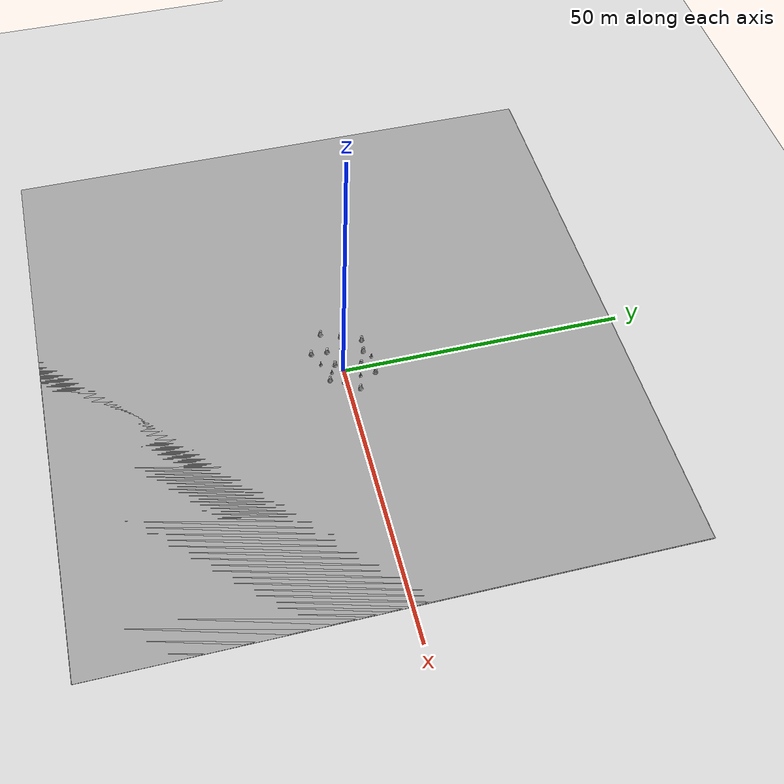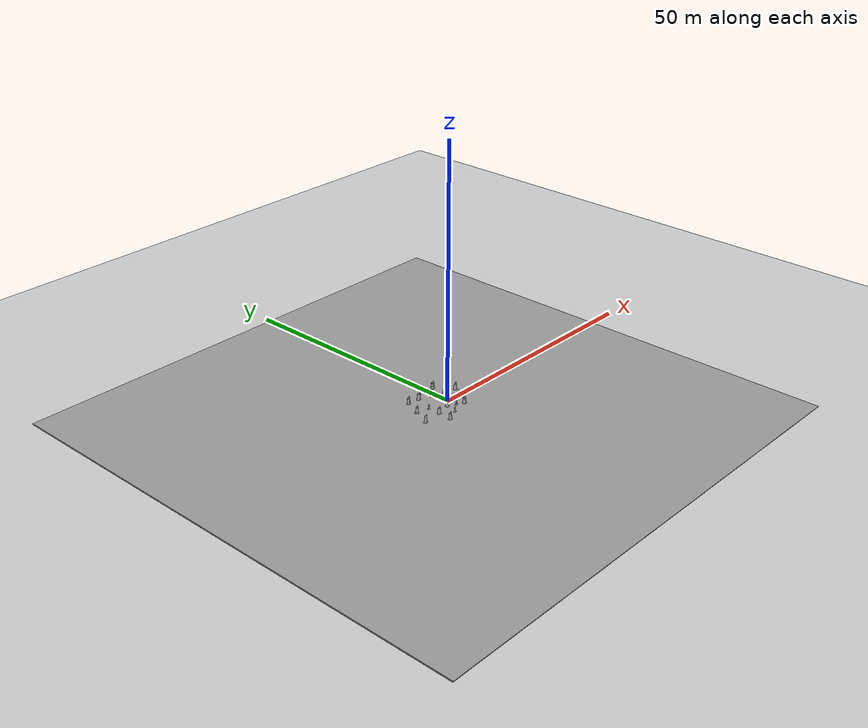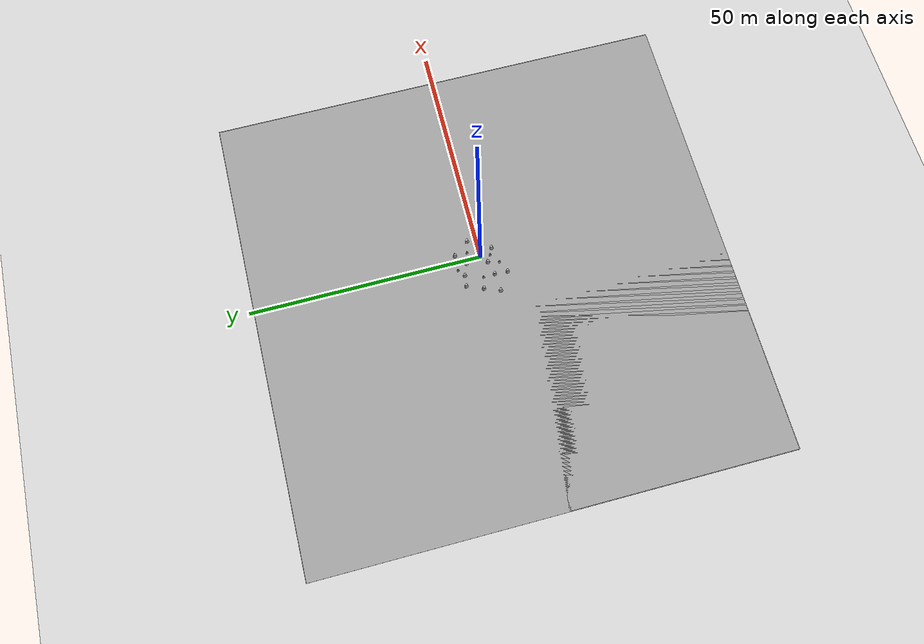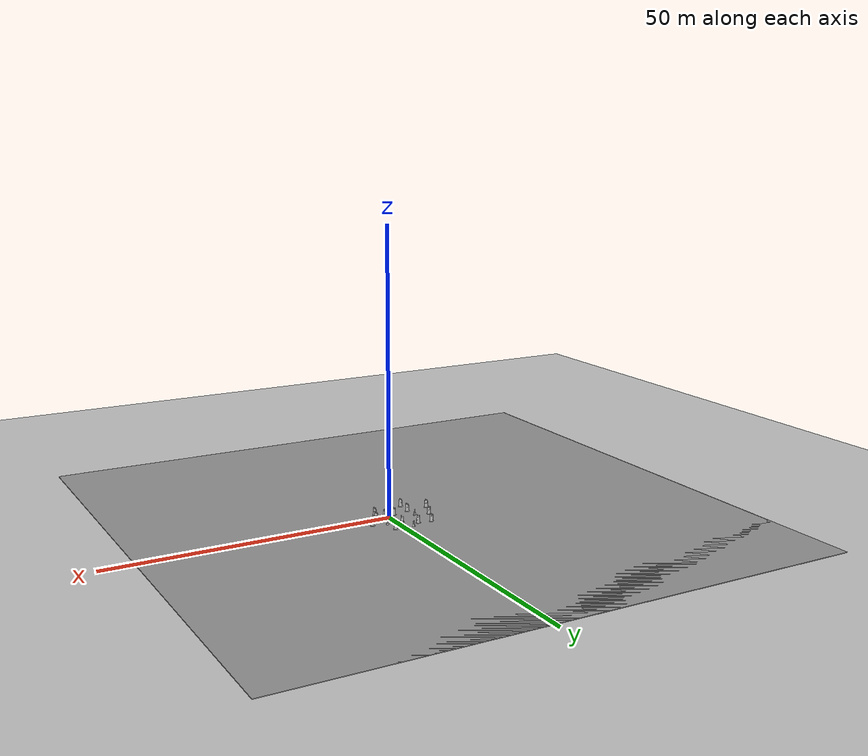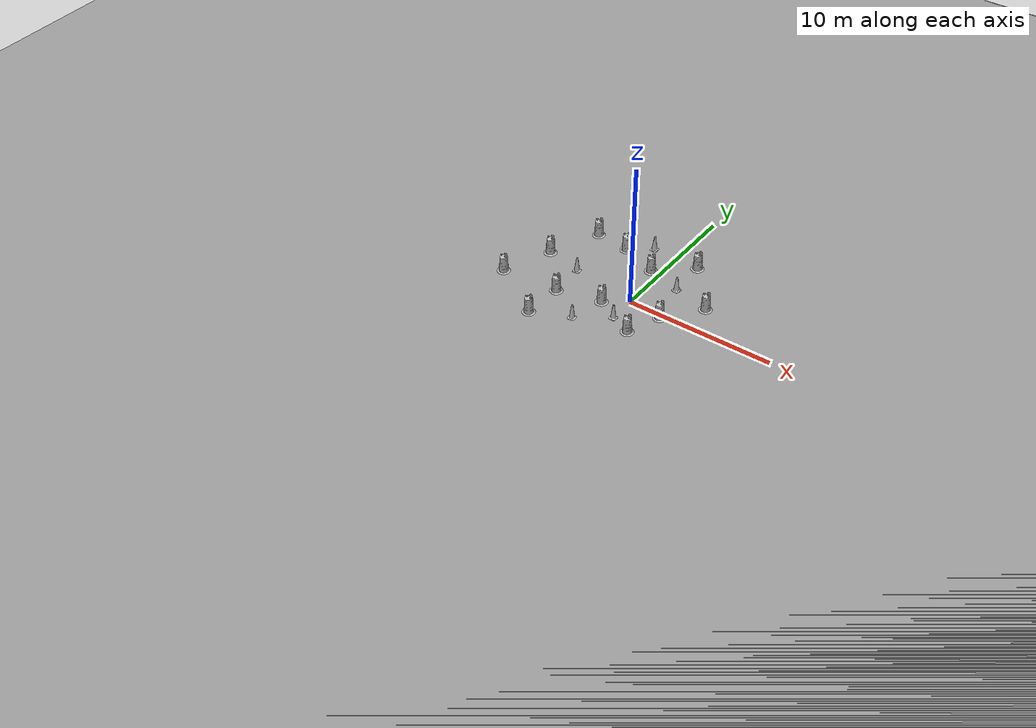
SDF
<sdf version="1.7">
 <world name="default">
  <light name="sun" type="directional">
   <pose>0 0 10 0 -0 0</pose>
   <diffuse>0.8 0.8 0.8 1</diffuse>
   <specular>0.2 0.2 0.2 1</specular>
   <attenuation>
    <range>1000</range>
    <constant>0.9</constant>
    <linear>0.01</linear>
    <quadratic>0.001</quadratic>
   </attenuation>
   <direction>-0.5 0.1 -0.9</direction>
   <spot><inner_angle>0</inner_angle><outer_angle>0</outer_angle><falloff>0</falloff></spot>
  </light>
  <model name="ground_plane">
   <static>1</static>
   <link name="link">
    <collision name="collision">
     <geometry><plane><normal>0 0 1</normal><size>100 100</size></plane></geometry>
     <surface><friction><ode><mu>100</mu><mu2>50</mu2></ode></friction></surface>
    </collision>
    <visual name="visual">
     <cast_shadows>0</cast_shadows>
     <geometry><plane><normal>0 0 1</normal><size>100 100</size></plane></geometry>
     <material>
      <script><uri>file://media/materials/scripts/gazebo.material</uri><name>Gazebo/Grey</name></script>
     </material>
    </visual>
   </link>
  </model>
  <gravity>0 0 -9.8</gravity>
  <magnetic_field>6e-06 2.3e-05 -4.2e-05</magnetic_field>
  <atmosphere type="adiabatic"/>
  <physics type="ode">
   <max_step_size>0.001</max_step_size>
   <real_time_factor>1</real_time_factor>
   <real_time_update_rate>1000</real_time_update_rate>
  </physics>
  <scene><ambient>0.4 0.4 0.4 1</ambient><background>0.7 0.7 0.7 1</background><shadows>1</shadows></scene>
  <audio><device>default</device></audio>
  <spherical_coordinates>
   <surface_model>EARTH_WGS84</surface_model>
   <latitude_deg>0</latitude_deg>
   <longitude_deg>0</longitude_deg>
   <elevation>0</elevation>
   <heading_deg>0</heading_deg>
  </spherical_coordinates>
  <model name="Construction Barrel">
   <link name="link">
    <inertial>
     <pose>0 0 0.4 0 -0 0</pose>
     <mass>500</mass>
     <inertia><ixx>51.2096</ixx><iyy>51.2096</iyy><izz>25</izz><ixy>0</ixy><ixz>0</ixz><iyz>0</iyz></inertia>
    </inertial>
    <collision name="collision">
     <geometry><mesh><uri>model://construction_barrel/meshes/construction_barrel.dae</uri></mesh></geometry>
    </collision>
    <visual name="visual">
     <geometry><mesh><uri>model://construction_barrel/meshes/construction_barrel.dae</uri></mesh></geometry>
    </visual>
   </link>
   <pose>-1.46648 -1.12469 -2e-06 -2e-06 7e-06 -3.8e-05</pose>
  </model>
  <model name="Construction Barrel_0">
   <link name="link">
    <inertial>
     <pose>0 0 0.4 0 -0 0</pose>
     <mass>500</mass>
     <inertia><ixx>51.2096</ixx><iyy>51.2096</iyy><izz>25</izz><ixy>0</ixy><ixz>0</ixz><iyz>0</iyz></inertia>
    </inertial>
    <collision name="collision">
     <geometry><mesh><uri>model://construction_barrel/meshes/construction_barrel.dae</uri></mesh></geometry>
    </collision>
    <visual name="visual">
     <geometry><mesh><uri>model://construction_barrel/meshes/construction_barrel.dae</uri></mesh></geometry>
    </visual>
   </link>
   <pose>-5.59234 4.66958 -2e-06 -2e-06 7e-06 -4e-05</pose>
  </model>
  <model name="Construction Barrel_1">
   <link name="link">
    <inertial>
     <pose>0 0 0.4 0 -0 0</pose>
     <mass>500</mass>
     <inertia><ixx>51.2096</ixx><iyy>51.2096</iyy><izz>25</izz><ixy>0</ixy><ixz>0</ixz><iyz>0</iyz></inertia>
    </inertial>
    <collision name="collision">
     <geometry><mesh><uri>model://construction_barrel/meshes/construction_barrel.dae</uri></mesh></geometry>
    </collision>
    <visual name="visual">
     <geometry><mesh><uri>model://construction_barrel/meshes/construction_barrel.dae</uri></mesh></geometry>
    </visual>
   </link>
   <pose>-0.662217 3.36273 0 1e-06 6e-06 -3.2e-05</pose>
  </model>
  <model name="Construction Cone">
   <link name="link">
    <collision name="collision">
     <geometry>
      <mesh><scale>10 10 10</scale><uri>model://construction_cone/meshes/construction_cone.dae</uri></mesh>
     </geometry>
    </collision>
    <visual name="visual">
     <geometry>
      <mesh><scale>10 10 10</scale><uri>model://construction_cone/meshes/construction_cone.dae</uri></mesh>
     </geometry>
    </visual>
    <inertial>
     <inertia><ixx>1</ixx><ixy>0</ixy><ixz>0</ixz><iyy>1</iyy><iyz>0</iyz><izz>1</izz></inertia>
     <mass>1</mass>
    </inertial>
   </link>
   <pose>-4.55441 0.624173 -7e-06 -1e-06 -1e-06 0</pose>
  </model>
  <model name="Construction Barrel_3">
   <link name="link">
    <inertial>
     <pose>0 0 0.4 0 -0 0</pose>
     <mass>500</mass>
     <inertia><ixx>51.2096</ixx><iyy>51.2096</iyy><izz>25</izz><ixy>0</ixy><ixz>0</ixz><iyz>0</iyz></inertia>
    </inertial>
    <collision name="collision">
     <geometry><mesh><uri>model://construction_barrel/meshes/construction_barrel.dae</uri></mesh></geometry>
    </collision>
    <visual name="visual">
     <geometry><mesh><uri>model://construction_barrel/meshes/construction_barrel.dae</uri></mesh></geometry>
    </visual>
   </link>
   <pose>1.46964 -2.66366 3e-06 5e-06 -2e-06 -1.7e-05</pose>
  </model>
  <model name="Construction Barrel_2">
   <link name="link">
    <inertial>
     <pose>0 0 0.4 0 -0 0</pose>
     <mass>500</mass>
     <inertia><ixx>51.2096</ixx><iyy>51.2096</iyy><izz>25</izz><ixy>0</ixy><ixz>0</ixz><iyz>0</iyz></inertia>
    </inertial>
    <collision name="collision">
     <geometry><mesh><uri>model://construction_barrel/meshes/construction_barrel.dae</uri></mesh></geometry>
    </collision>
    <visual name="visual">
     <geometry><mesh><uri>model://construction_barrel/meshes/construction_barrel.dae</uri></mesh></geometry>
    </visual>
   </link>
   <pose>-4.43788 -1.84754 -2e-06 -2e-06 7e-06 -2.8e-05</pose>
  </model>
  <model name="Construction Barrel_4">
   <link name="link">
    <inertial>
     <pose>0 0 0.4 0 -0 0</pose>
     <mass>500</mass>
     <inertia><ixx>51.2096</ixx><iyy>51.2096</iyy><izz>25</izz><ixy>0</ixy><ixz>0</ixz><iyz>0</iyz></inertia>
    </inertial>
    <collision name="collision">
     <geometry><mesh><uri>model://construction_barrel/meshes/construction_barrel.dae</uri></mesh></geometry>
    </collision>
    <visual name="visual">
     <geometry><mesh><uri>model://construction_barrel/meshes/construction_barrel.dae</uri></mesh></geometry>
    </visual>
   </link>
   <pose>-7.06208 1.21078 0 -0 -0 -2e-06</pose>
  </model>
  <model name="Construction Barrel_5">
   <link name="link">
    <inertial>
     <pose>0 0 0.4 0 -0 0</pose>
     <mass>500</mass>
     <inertia><ixx>51.2096</ixx><iyy>51.2096</iyy><izz>25</izz><ixy>0</ixy><ixz>0</ixz><iyz>0</iyz></inertia>
    </inertial>
    <collision name="collision">
     <geometry><mesh><uri>model://construction_barrel/meshes/construction_barrel.dae</uri></mesh></geometry>
    </collision>
    <visual name="visual">
     <geometry><mesh><uri>model://construction_barrel/meshes/construction_barrel.dae</uri></mesh></geometry>
    </visual>
   </link>
   <pose>-3.20837 4.36049 3e-06 5e-06 -2e-06 -1.4e-05</pose>
  </model>
  <model name="Construction Cone_0">
   <link name="link">
    <collision name="collision">
     <geometry>
      <mesh><scale>10 10 10</scale><uri>model://construction_cone/meshes/construction_cone.dae</uri></mesh>
     </geometry>
    </collision>
    <visual name="visual">
     <geometry>
      <mesh><scale>10 10 10</scale><uri>model://construction_cone/meshes/construction_cone.dae</uri></mesh>
     </geometry>
    </visual>
    <inertial>
     <inertia><ixx>1</ixx><ixy>0</ixy><ixz>0</ixz><iyy>1</iyy><iyz>0</iyz><izz>1</izz></inertia>
     <mass>1</mass>
    </inertial>
   </link>
   <pose>1.71617 2.64396 -0 0 -1e-06 0</pose>
  </model>
  <model name="Construction Cone_1">
   <link name="link">
    <collision name="collision">
     <geometry>
      <mesh><scale>10 10 10</scale><uri>model://construction_cone/meshes/construction_cone.dae</uri></mesh>
     </geometry>
    </collision>
    <visual name="visual">
     <geometry>
      <mesh><scale>10 10 10</scale><uri>model://construction_cone/meshes/construction_cone.dae</uri></mesh>
     </geometry>
    </visual>
    <inertial>
     <inertia><ixx>1</ixx><ixy>0</ixy><ixz>0</ixz><iyy>1</iyy><iyz>0</iyz><izz>1</izz></inertia>
     <mass>1</mass>
    </inertial>
   </link>
   <pose>-2.07281 -3.49893 -9e-06 1e-06 -0 0</pose>
  </model>
  <model name="Construction Barrel_6">
   <link name="link">
    <inertial>
     <pose>0 0 0.4 0 -0 0</pose>
     <mass>500</mass>
     <inertia><ixx>51.2096</ixx><iyy>51.2096</iyy><izz>25</izz><ixy>0</ixy><ixz>0</ixz><iyz>0</iyz></inertia>
    </inertial>
    <collision name="collision">
     <geometry><mesh><uri>model://construction_barrel/meshes/construction_barrel.dae</uri></mesh></geometry>
    </collision>
    <visual name="visual">
     <geometry><mesh><uri>model://construction_barrel/meshes/construction_barrel.dae</uri></mesh></geometry>
    </visual>
   </link>
   <pose>-8.37126 -2.12994 -1e-06 0 2e-06 -1.4e-05</pose>
  </model>
  <model name="Construction Barrel_7">
   <link name="link">
    <inertial>
     <pose>0 0 0.4 0 -0 0</pose>
     <mass>500</mass>
     <inertia><ixx>51.2096</ixx><iyy>51.2096</iyy><izz>25</izz><ixy>0</ixy><ixz>0</ixz><iyz>0</iyz></inertia>
    </inertial>
    <collision name="collision">
     <geometry><mesh><uri>model://construction_barrel/meshes/construction_barrel.dae</uri></mesh></geometry>
    </collision>
    <visual name="visual">
     <geometry><mesh><uri>model://construction_barrel/meshes/construction_barrel.dae</uri></mesh></geometry>
    </visual>
   </link>
   <pose>2.35048 -0.354234 -2e-06 7e-06 -4e-06 6.9e-05</pose>
  </model>
  <model name="Construction Barrel_8">
   <link name="link">
    <inertial>
     <pose>0 0 0.4 0 -0 0</pose>
     <mass>500</mass>
     <inertia><ixx>51.2096</ixx><iyy>51.2096</iyy><izz>25</izz><ixy>0</ixy><ixz>0</ixz><iyz>0</iyz></inertia>
    </inertial>
    <collision name="collision">
     <geometry><mesh><uri>model://construction_barrel/meshes/construction_barrel.dae</uri></mesh></geometry>
    </collision>
    <visual name="visual">
     <geometry><mesh><uri>model://construction_barrel/meshes/construction_barrel.dae</uri></mesh></geometry>
    </visual>
   </link>
   <pose>4.24041 2.02475 -1e-06 1e-06 5e-06 -2.5e-05</pose>
  </model>
  <model name="Construction Barrel_9">
   <link name="link">
    <inertial>
     <pose>0 0 0.4 0 -0 0</pose>
     <mass>500</mass>
     <inertia><ixx>51.2096</ixx><iyy>51.2096</iyy><izz>25</izz><ixy>0</ixy><ixz>0</ixz><iyz>0</iyz></inertia>
    </inertial>
    <collision name="collision">
     <geometry><mesh><uri>model://construction_barrel/meshes/construction_barrel.dae</uri></mesh></geometry>
    </collision>
    <visual name="visual">
     <geometry><mesh><uri>model://construction_barrel/meshes/construction_barrel.dae</uri></mesh></geometry>
    </visual>
   </link>
   <pose>-4.58593 -4.62299 -2e-06 -8e-06 -6e-06 -1.9e-05</pose>
  </model>
  <model name="Construction Barrel_10">
   <link name="link">
    <inertial>
     <pose>0 0 0.4 0 -0 0</pose>
     <mass>500</mass>
     <inertia><ixx>51.2096</ixx><iyy>51.2096</iyy><izz>25</izz><ixy>0</ixy><ixz>0</ixz><iyz>0</iyz></inertia>
    </inertial>
    <collision name="collision">
     <geometry><mesh><uri>model://construction_barrel/meshes/construction_barrel.dae</uri></mesh></geometry>
    </collision>
    <visual name="visual">
     <geometry><mesh><uri>model://construction_barrel/meshes/construction_barrel.dae</uri></mesh></geometry>
    </visual>
   </link>
   <pose>1.61886 5.31992 -2e-06 -8e-06 -6e-06 -1.6e-05</pose>
  </model>
  <model name="Construction Cone_2">
   <link name="link">
    <collision name="collision">
     <geometry>
      <mesh><scale>10 10 10</scale><uri>model://construction_cone/meshes/construction_cone.dae</uri></mesh>
     </geometry>
    </collision>
    <visual name="visual">
     <geometry>
      <mesh><scale>10 10 10</scale><uri>model://construction_cone/meshes/construction_cone.dae</uri></mesh>
     </geometry>
    </visual>
    <inertial>
     <inertia><ixx>1</ixx><ixy>0</ixy><ixz>0</ixz><iyy>1</iyy><iyz>0</iyz><izz>1</izz></inertia>
     <mass>1</mass>
    </inertial>
   </link>
   <pose>-1.74562 5.45614 -7e-06 -1e-06 -1e-06 0</pose>
  </model>
  <model name="ground_plane_0">
   <static>1</static>
   <link name="link">
    <collision name="collision">
     <geometry><plane><normal>0 0 1</normal><size>100 100</size></plane></geometry>
     <surface><friction><ode><mu>100</mu><mu2>50</mu2></ode></friction></surface>
    </collision>
    <visual name="visual">
     <cast_shadows>0</cast_shadows>
     <geometry><plane><normal>0 0 1</normal><size>100 100</size></plane></geometry>
     <material>
      <script><uri>file://media/materials/scripts/gazebo.material</uri><name>Gazebo/Grey</name></script>
     </material>
    </visual>
   </link>
   <pose>-6.05295 -1.02726 0 0 -0 0</pose>
  </model>
  <model name="ground_plane_1">
   <static>1</static>
   <link name="link">
    <collision name="collision">
     <geometry><plane><normal>0 0 1</normal><size>100 100</size></plane></geometry>
     <surface><friction><ode><mu>100</mu><mu2>50</mu2></ode></friction></surface>
    </collision>
    <visual name="visual">
     <cast_shadows>0</cast_shadows>
     <geometry><plane><normal>0 0 1</normal><size>100 100</size></plane></geometry>
     <material>
      <script><uri>file://media/materials/scripts/gazebo.material</uri><name>Gazebo/Grey</name></script>
     </material>
    </visual>
   </link>
   <pose>-5.92889 -0.969604 0 0 -0 0</pose>
  </model>
  <model name="Construction Cone_3">
   <link name="link">
    <collision name="collision">
     <geometry>
      <mesh><scale>10 10 10</scale><uri>model://construction_cone/meshes/construction_cone.dae</uri></mesh>
     </geometry>
    </collision>
    <visual name="visual">
     <geometry>
      <mesh><scale>10 10 10</scale><uri>model://construction_cone/meshes/construction_cone.dae</uri></mesh>
     </geometry>
    </visual>
    <inertial>
     <inertia><ixx>1</ixx><ixy>0</ixy><ixz>0</ixz><iyy>1</iyy><iyz>0</iyz><izz>1</izz></inertia>
     <mass>1</mass>
    </inertial>
   </link>
   <pose>0.015483 -2.01552 -0 0 -1e-06 0</pose>
  </model>
 </world>
</sdf>
